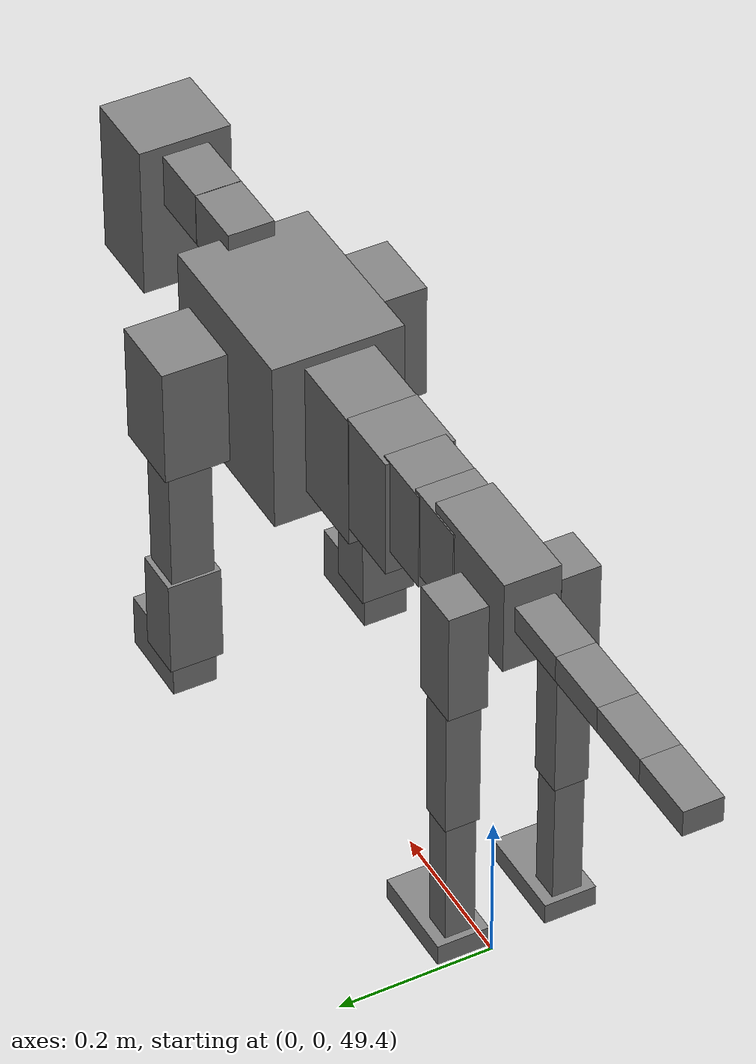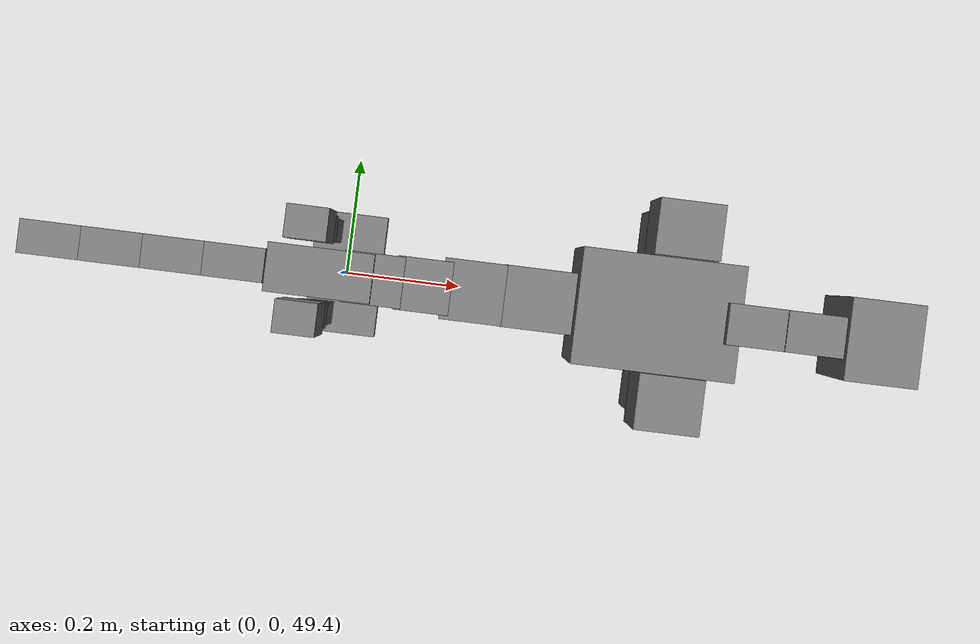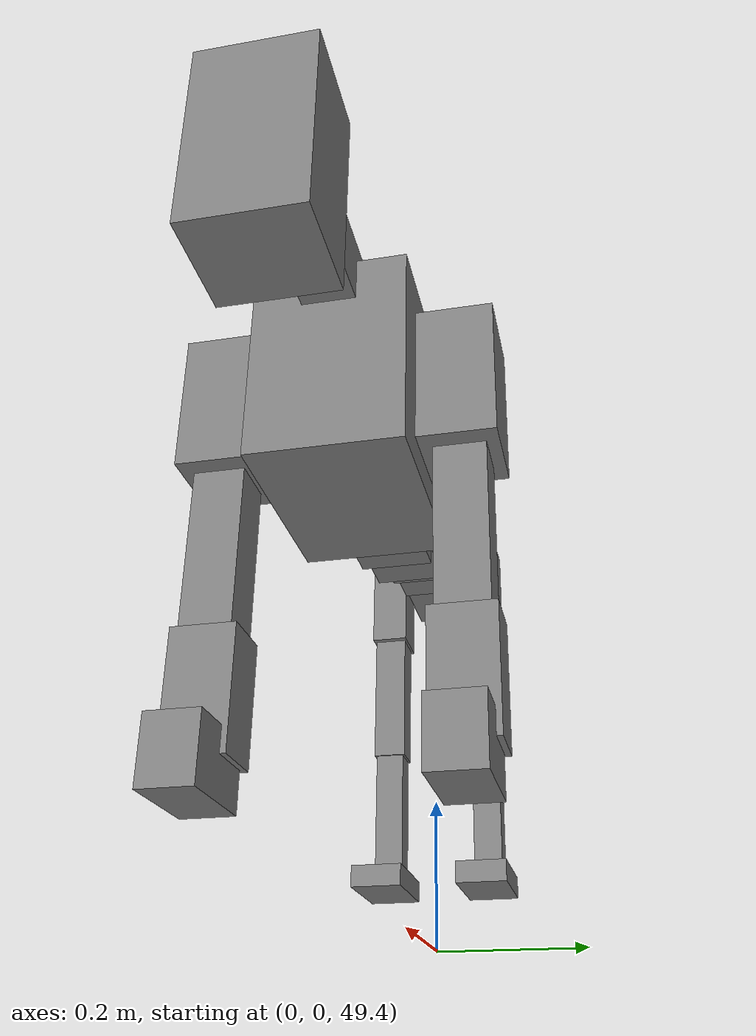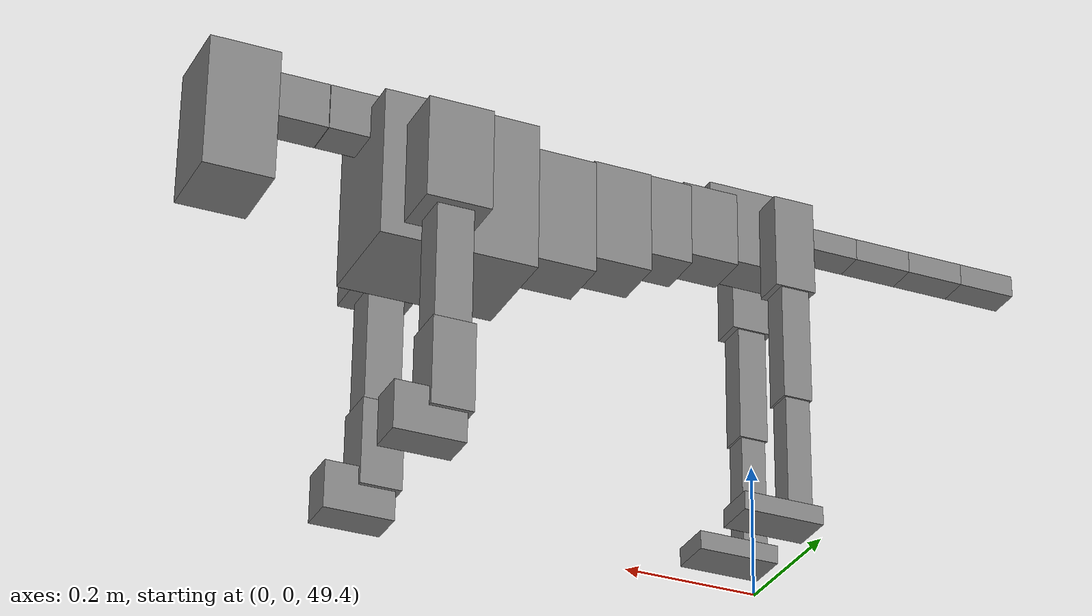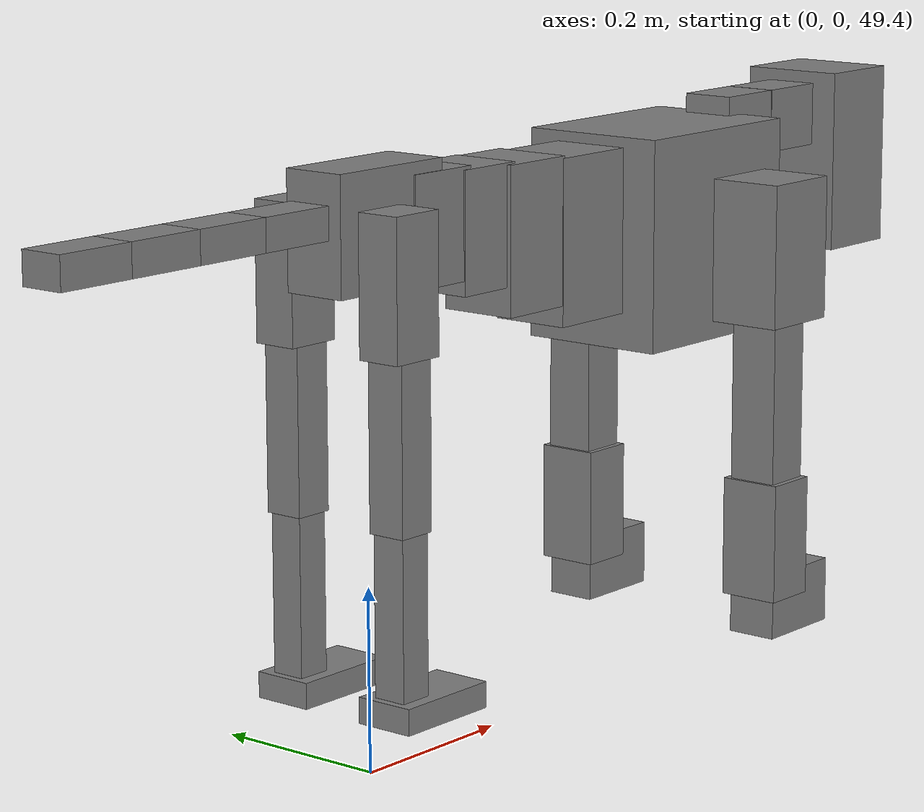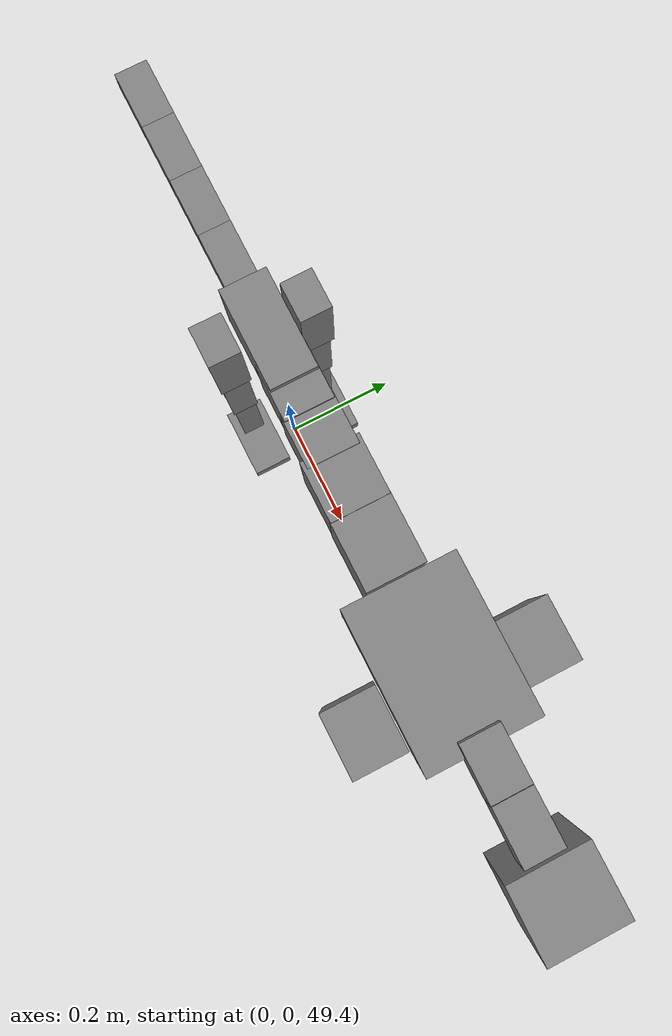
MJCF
<mujoco model="dog">

    <default>
        <joint armature="0.02" stiffness="1" damping="0.2" limited="true"/>
        <geom condim="3" friction="1 0.05 0.05" margin="0.01"/>
        <motor ctrllimited="true" ctrlrange="-1.0 1.0" forcelimited="true" gear="50"/>
    </default>

    <compiler inertiafromgeom="true" angle="radian"/>

    <option timestep="0.016" iterations="50" tolerance="1e-10" solver="Newton" jacobian="dense" cone="pyramidal"/>

    <size nconmax="20000" njmax="60000" nstack="5000000"/>
    <visual>
        <map force="0.1" zfar="30"/>
        <rgba haze="0.15 0.25 0.35 1"/>
        <quality shadowsize="2048"/>
        <global offwidth="800" offheight="800"/>
    </visual>

    <asset>
        <texture type="skybox" builtin="gradient" rgb1="0.3 0.5 0.7" rgb2="0 0 0" width="512" height="512"/>
        <texture name="texplane" type="2d" builtin="checker" rgb1=".2 .3 .4" rgb2=".1 0.15 0.2" width="512" height="512"
                 mark="cross" markrgb=".8 .8 .8"/>
        <texture name="texgeom" type="cube" builtin="flat" mark="cross" width="127" height="1278" rgb1="0.8 0.6 0.4"
                 rgb2="0.8 0.6 0.4" markrgb="1 1 1" random="0.01"/>

        <material name="matplane" reflectance="0.3" texture="texplane" texrepeat="1 1" texuniform="true"/>
        <material name="matgeom" texture="texgeom" texuniform="true" rgba="0.8 0.6 .4 1"/>
    </asset>

    <worldbody>
        <geom name="floor" pos="0 0 0" size="0 0 .25" type="plane" material="matplane" condim="3"/>

        <light directional="false" diffuse=".2 .2 .2" specular="0 0 0" pos="0 0 5" dir="0 0 -1" castshadow="false"/>
        <light mode="targetbodycom" target="torso" directional="false" diffuse=".8 .8 .8" specular="0.3 0.3 0.3"
               pos="0 0 4.0" dir="0 0 -1"/>

        <body name="root" pos="0 0 50">
            <freejoint name="root_1"/>
            <geom type="box" pos="0 0 -0.02" size="0.0774  0.0358  0.063" density="2030"/>

            <body name="spine1" pos="0.054 0 0">
                <joint name="spine1_y" axis="0 1 0" range="0 0.7" limited="true"/>
                <geom type="box" pos="0.02375 0 -0.03" size="0.04375  0.0375  0.05985" density="2030"/>

                <body name="spine2" pos="0.0612 0 0">
                    <joint name="spine2_y" axis="0 1 0" range="-0.15 0.15" limited="true"/>
                    <geom type="box" pos="0.03555  0  -0.04" size="0.04055  0.039  0.06615" density="2030"/>

                    <body name="spine3" pos="0.0730 0 0">
                        <joint name="spine3_y" axis="0 1 0" range="-0.15 0.15" limited="true"/>
                        <geom type="box" pos="0.03555  0  -0.057" size="0.04555  0.0445  0.081" density="2030"/>

                        <body name="spine4" pos="0.0780 0 0">
                            <joint name="spine4_y" axis="0 1 0" range="-0.15 0.15" limited="true"/>
                            <geom type="box" pos="0.05265  0  -0.07" size="0.05265  0.045  0.09135" density="2030"/>

                            <body name="torso" pos="0.1082 0 0">
                                <joint name="torso_y" axis="0 1 0" range="-0.15 0.15" limited="true"/>
                                <geom type="box" pos="0.11925  0  -0.085" size="0.11925  0.085  0.11745"
                                      density="2030"/>

                                <body name="neck1" pos="0.2160  0   0.0180">
                                    <joint name="neck1_y" axis="0 1 0" range="-1.2  -1" limited="true"/>
                                    <geom type="box" pos="0.0423  0  0" size="0.0423  0.03  0.036" density="2325"/>

                                    <body name="neck2" pos="0.0853  0  0">
                                        <joint name="neck2_y" axis="0 1 0" range="0.1  0" limited="true"/>
                                        <geom type="box" pos="0.0423  0  0" size="0.0423  0.03  0.036" density="2325"/>

                                        <body name="head" pos="0.0853  0  0">
                                            <joint name="head_y" axis="0 1 0" range="-0.3  -0.2" limited="true"/>
                                            <geom type="box" pos="0.0531  0  -0.055" size="0.0531  0.06  0.1044"
                                                  density="4030"/>

                                        </body>
                                    </body>
                                </body>

                                <body name="front_shoulder" pos="0.156  0   -0.0480">
                                    <joint name="front_shoulder_y" axis="0 1 0" range="-1 1.5" limited="true"/>
                                    <geom type="box" pos="0 0.13 -0.0534" size="0.0490  0.0419  0.0800" density="1158"/>
                                    <geom type="box" pos="0 -0.13 -0.0534" size="0.0490  0.0419  0.0800"
                                          density="1158"/>

                                    <body name="front_elbow" pos="0  0  -0.1068">
                                        <joint name="front_elbow_y" axis="0 1 0" range="-2 0" limited="true"/>
                                        <geom type="box" pos="0 0.13 -0.1106" size="0.0276  0.0282  0.1106"
                                              density="1081"/>
                                        <geom type="box" pos="0 -0.13 -0.1106" size="0.0276  0.0282  0.1106"
                                              density="1081"/>

                                        <body name="front_wrist" pos="0  0  -0.2212">
                                            <joint name="front_wrist_y" axis="0 1 0" range="-0.2 0" limited="true"/>
                                            <geom type="box" pos="0 0.13 -0.0542" size="0.0316  0.0351  0.0674"
                                                  density="1664"/>
                                            <geom type="box" pos="0 -0.13 -0.0542" size="0.0316  0.0351  0.0674"
                                                  density="1664"/>

                                            <body name="front_finger_end" pos="0  0  -0.1084">
                                                <joint name="front_finger_y" axis="0 1 0" range="-0.4 1"
                                                       limited="true"/>
                                                <geom type="box" pos="0.0289  0.13  -0.0216"
                                                      size="0.0531  0.0289  0.0366" density="1515"/>
                                                <geom type="box" pos="0.0289  -0.13  -0.0216"
                                                      size="0.0531  0.0289  0.0366" density="1515"/>

                                            </body>

                                        </body>
                                    </body>
                                </body>

                            </body>
                        </body>
                    </body>
                </body>
            </body>

            <body name="back_hip" pos="-0.03 0 -0.018">
                <joint name="back_hip_y" axis="0 1 0" range="-1.5 0.3" limited="true"/>
                <geom type="box" pos="0 0.07 -0.0517" size="0.0317  0.0249  0.0745" density="1154"/>
                <geom type="box" pos="0 -0.07 -0.0517" size="0.0317  0.0249  0.0745" density="1154"/>

                <body name="back_knee" pos="0  0  -0.1035">
                    <joint name="back_knee_y" axis="0 1 0" range="0 2.8" limited="true"/>
                    <geom type="box" pos="0 0.07 -0.0932" size="0.0222  0.0219  0.1088" density="1227"/>
                    <geom type="box" pos="0 -0.07 -0.0932" size="0.0222  0.0219  0.1088" density="1227"/>

                    <body name="back_ankle" pos="0  0  -0.1864">
                        <joint name="back_ankle_y" axis="0 1 0" range="-2.2 0" limited="true"/>
                        <geom type="box" pos="0 0.07 -0.1015" size="0.0191  0.0191  0.1128" density="1284"/>
                        <geom type="box" pos="0 -0.07 -0.1015" size="0.0191  0.0191  0.1128" density="1284"/>

                        <body name="back_toe_end" pos="0  0  -0.2031">
                            <joint name="back_toe_y" axis="0 1 0" range="-0.4 1" limited="true"/>
                            <geom type="box" pos="0.0335  0.07  0.0009" size="0.0614  0.0335  0.0141" density="1515"/>
                            <geom type="box" pos="0.0335  -0.07  0.0009" size="0.0614  0.0335  0.0141" density="1515"/>

                        </body>
                    </body>
                </body>
            </body>

            <body name="tail1" pos="-0.074 0 -0.006">
                <joint name="tail1_y" axis="0 1 0" range="-0.2 0.2" limited="true"/>
                <geom type="box" pos="-0.0536  0  0" size="0.045  0.025  0.0175" density="1587"/>

                <body name="tail2" pos="-0.09 0 0">
                    <joint name="tail2_y" axis="0 1 0" range="-0.2 0.2" limited="true"/>
                    <geom type="box" pos="-0.0536  0  0" size="0.045  0.025  0.0175" density="1587"/>

                    <body name="tail3" pos="-0.09 0 0">
                        <joint name="tail3_y" axis="0 1 0" range="-0.2 0.2" limited="true"/>
                        <geom type="box" pos="-0.0536  0  0" size="0.045  0.025  0.0175" density="1587"/>

                        <body name="tail4" pos="-0.09 0 0">
                            <joint name="tail4_y" axis="0 1 0" range="-0.2 0.2" limited="true"/>
                            <geom type="box" pos="-0.0536  0  0" size="0.045  0.025  0.0175" density="1587"/>

                        </body>
                    </body>
                </body>
            </body>
        </body>
    </worldbody>

    <actuator>
        <motor joint="spine1_y" forcerange="-150 150     "/>
        <motor joint="spine2_y" forcerange="-150 150     "/>
        <motor joint="spine3_y" forcerange="-150 150     "/>
        <motor joint="spine4_y" forcerange="-150 150     "/>
        <motor joint="torso_y" forcerange="-150 150     "/>
        <motor joint="neck1_y" forcerange="-100 100       "/>
        <motor joint="neck2_y" forcerange="-100 100       "/>
        <motor joint="head_y" forcerange="-150 150       "/>
        <motor joint="front_shoulder_y" forcerange="-181.54 197.65"/>
        <motor joint="front_elbow_y" forcerange="-129.54 175.35"/>
        <motor joint="front_wrist_y" forcerange="-149.69 131.10"/>
        <motor joint="front_finger_y" forcerange="-48.07 66.29"/>
        <motor joint="back_hip_y" forcerange="-208.05 323.33"/>
        <motor joint="back_knee_y" forcerange="-237.21 280.79"/>
        <motor joint="back_angle_y" forcerange="-145.32 60.75"/>
        <motor joint="back_toe_y" forcerange="-80.51 107.52"/>
        <motor joint="tail1_y" forcerange="-50 50     "/>
        <motor joint="tail2_y" forcerange="-50 50     "/>
        <motor joint="tail3_y" forcerange="-50 50     "/>
        <motor joint="tail4_y" forcerange="-50 50     "/>
    </actuator>
</mujoco>
